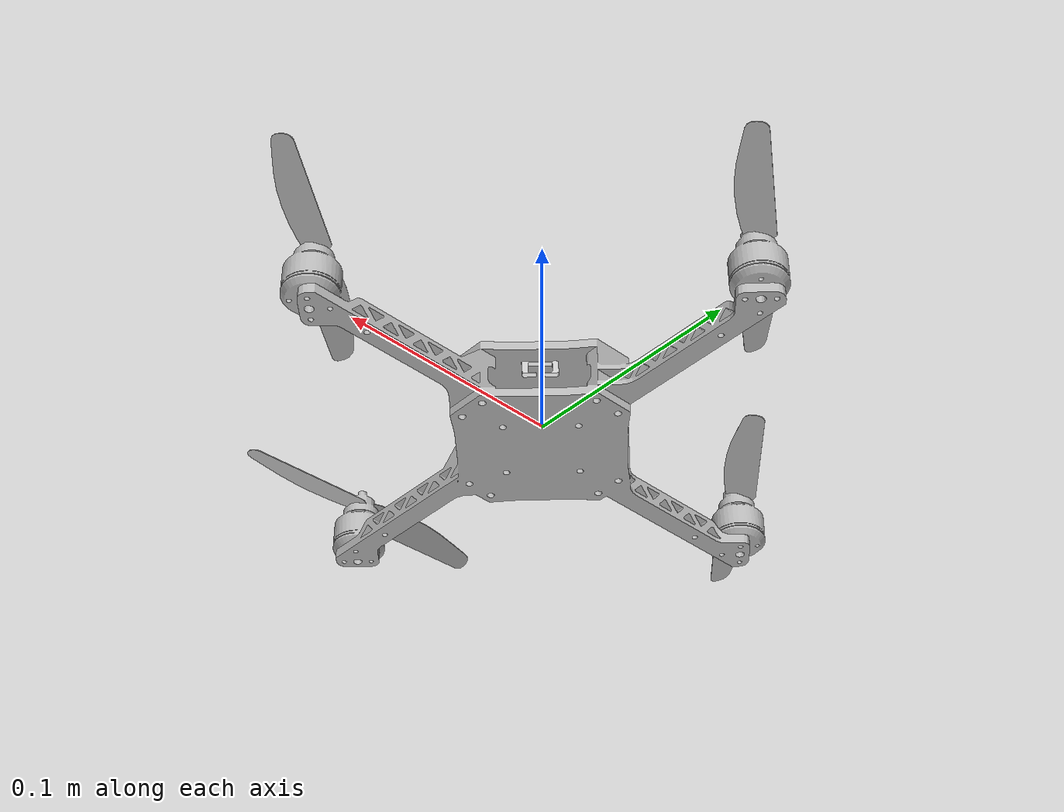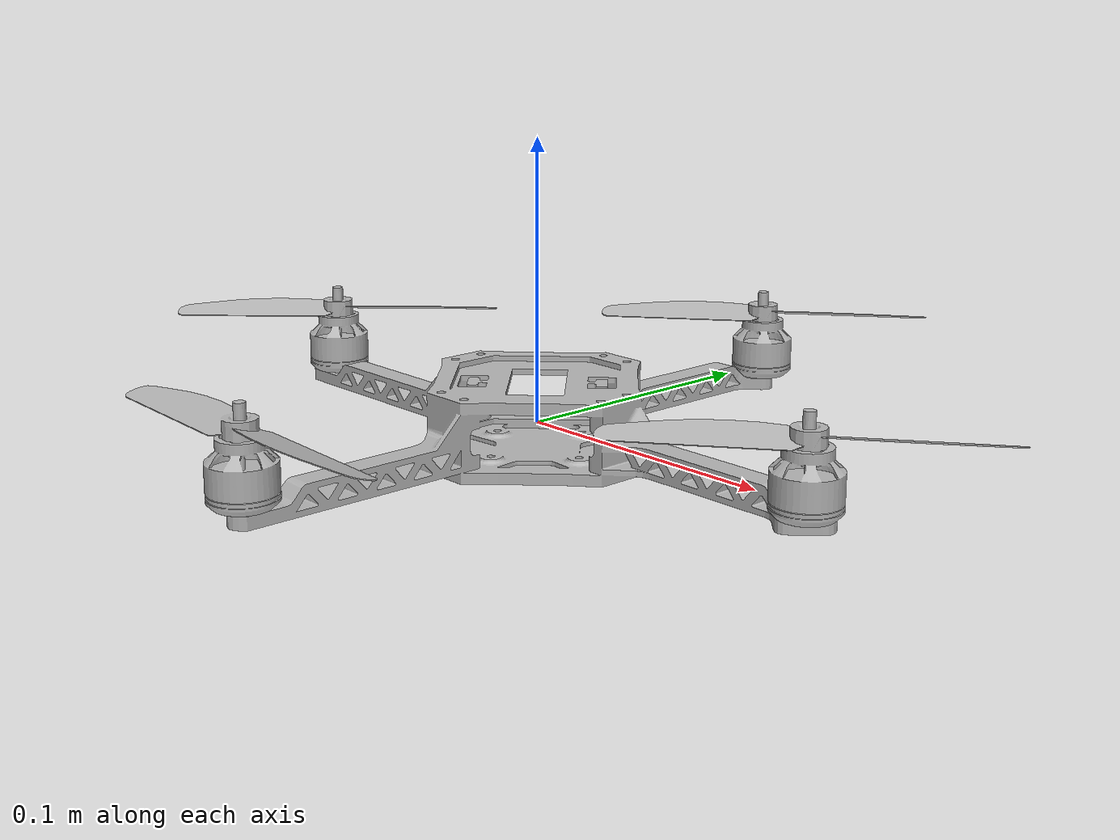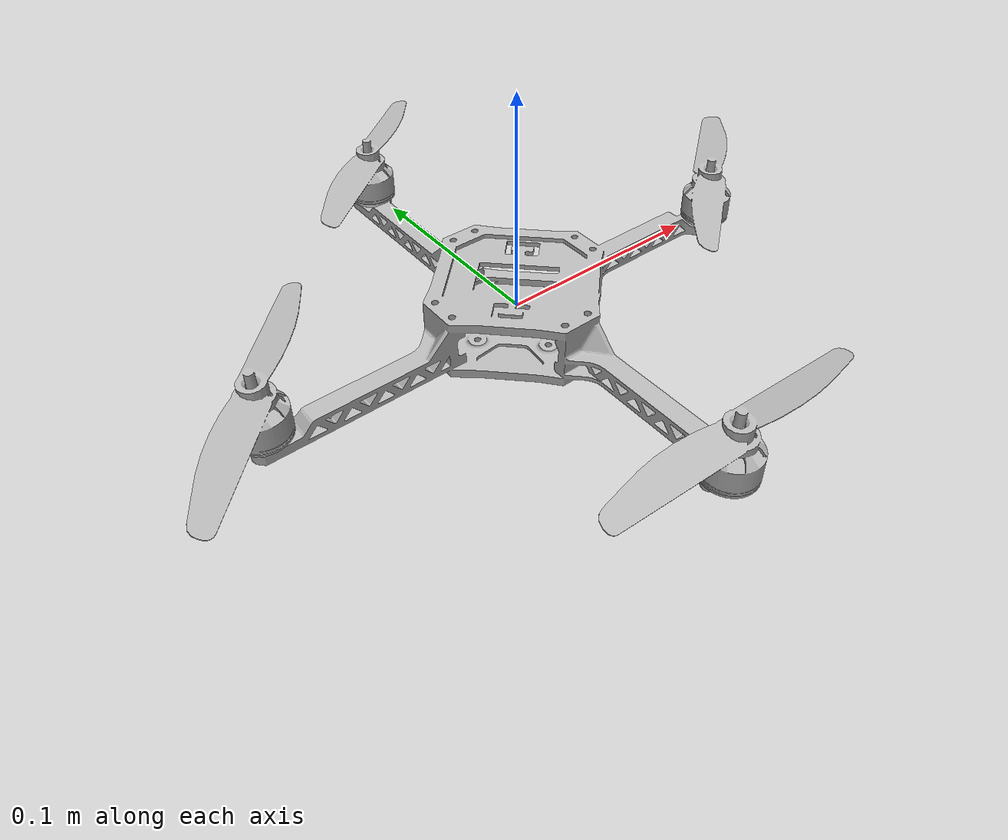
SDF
<sdf version='1.6'>
  <model name='quadcopter'>
    <link name='main_body'>
      <pose frame=''>0 0 0 0 -0 0</pose>
      <inertial>
        <pose frame=''>0 -0 0 0 -0 0</pose>
        <mass>2.4</mass>
        <inertia>
          <ixx>0.00010119</ixx>
          <ixy>5.6493e-08</ixy>
          <ixz>2.442e-14</ixz>
          <iyy>0.00010119</iyy>
          <iyz>-2.2727e-14</iyz>
          <izz>0.00019415</izz>
        </inertia>
      </inertial>
      <collision name='main_body_collision'>
        <pose frame=''>0 0 0 0 -0 0</pose>
        <geometry>
          <mesh>
            <scale>1 1 1</scale>
            <uri>model://quadcopter/meshes/main_body.STL</uri>
          </mesh>
        </geometry>
      </collision>
      <visual name='main_body_visual'>
        <pose frame=''>0 0 0 0 -0 0</pose>
        <geometry>
          <mesh>
            <scale>1 1 1</scale>
            <uri>model://quadcopter/meshes/main_body.STL</uri>
          </mesh>
        </geometry>
      </visual>
    </link>
    <link name='motor1'>
      <pose frame=''>-0.12 0 0.007797 -0 -0 -0.7854</pose>
      <inertial>
        <pose frame=''>0 -0 0 0 -0 0</pose>
        <mass>0.0067333</mass>
        <inertia>
          <ixx>1.2162e-06</ixx>
          <ixy>4.1395e-08</ixy>
          <ixz>-4.4137e-19</ixz>
          <iyy>6.3625e-07</iyy>
          <iyz>-1.4697e-17</iyz>
          <izz>9.6099e-07</izz>
        </inertia>
      </inertial>
      <collision name='motor1_collision'>
        <pose frame=''>0 0 0 0 -0 0</pose>
        <geometry>
          <mesh>
            <scale>1 1 1</scale>
            <uri>model://quadcopter/meshes/motor1.STL</uri>
          </mesh>
        </geometry>
      </collision>
      <visual name='motor1_visual'>
        <pose frame=''>0 0 0 0 -0 0</pose>
        <geometry>
          <mesh>
            <scale>1 1 1</scale>
            <uri>model://quadcopter/meshes/motor1.STL</uri>
          </mesh>
        </geometry>
      </visual>
    </link>
    <joint name='prp1' type='revolute'>
      <child>motor1</child>
      <parent>main_body</parent>
      <axis>
        <xyz>0 0 1</xyz>
        <limit>
          <lower>0</lower>
          <upper>31415</upper>
          <effort>0</effort>
          <velocity>0</velocity>
        </limit>
        <dynamics>
          <spring_reference>0</spring_reference>
          <spring_stiffness>0</spring_stiffness>
        </dynamics>
        <use_parent_model_frame>1</use_parent_model_frame>
      </axis>
    </joint>
    <link name='motor2'>
      <pose frame=''>0 -0.12 0.007797 -0 -0 -0.7854</pose>
      <inertial>
        <pose frame=''>-0 -0 0 0 -0 0</pose>
        <mass>0.0067333</mass>
        <inertia>
          <ixx>9.2893e-07</ixx>
          <ixy>-2.9263e-07</ixy>
          <ixz>-4.4012e-19</ixz>
          <iyy>9.2349e-07</iyy>
          <iyz>-1.4699e-17</iyz>
          <izz>9.6099e-07</izz>
        </inertia>
      </inertial>
      <collision name='motor2_collision'>
        <pose frame=''>0 0 0 0 -0 0</pose>
        <geometry>
          <mesh>
            <scale>1 1 1</scale>
            <uri>model://quadcopter/meshes/motor2.STL</uri>
          </mesh>
        </geometry>
      </collision>
      <visual name='motor2_visual'>
        <pose frame=''>0 0 0 0 -0 0</pose>
        <geometry>
          <mesh>
            <scale>1 1 1</scale>
            <uri>model://quadcopter/meshes/motor2.STL</uri>
          </mesh>
        </geometry>
      </visual>
    </link>
    <joint name='prp2' type='revolute'>
      <child>motor2</child>
      <parent>main_body</parent>
      <axis>
        <xyz>0 0 1</xyz>
        <limit>
          <lower>0</lower>
          <upper>31415</upper>
          <effort>0</effort>
          <velocity>0</velocity>
        </limit>
        <dynamics>
          <spring_reference>0</spring_reference>
          <spring_stiffness>0</spring_stiffness>
        </dynamics>
        <use_parent_model_frame>1</use_parent_model_frame>
      </axis>
    </joint>
    <link name='motor3'>
      <pose frame=''>0.12 0 0.007797 -0 -0 -0.7854</pose>
      <inertial>
        <pose frame=''>-0 -0 0 0 -0 0</pose>
        <mass>0.0067333</mass>
        <inertia>
          <ixx>1.2154e-06</ixx>
          <ixy>-4.6293e-08</ixy>
          <ixz>-4.4086e-19</ixz>
          <iyy>6.3699e-07</iyy>
          <iyz>-1.47e-17</iyz>
          <izz>9.6099e-07</izz>
        </inertia>
      </inertial>
      <collision name='motor3_collision'>
        <pose frame=''>0 0 0 0 -0 0</pose>
        <geometry>
          <mesh>
            <scale>1 1 1</scale>
            <uri>model://quadcopter/meshes/motor3.STL</uri>
          </mesh>
        </geometry>
      </collision>
      <visual name='motor3_visual'>
        <pose frame=''>0 0 0 0 -0 0</pose>
        <geometry>
          <mesh>
            <scale>1 1 1</scale>
            <uri>model://quadcopter/meshes/motor3.STL</uri>
          </mesh>
        </geometry>
      </visual>
    </link>
    <joint name='prp3' type='revolute'>
      <child>motor3</child>
      <parent>main_body</parent>
      <axis>
        <xyz>0 0 1</xyz>
        <limit>
          <lower>0</lower>
          <upper>31415</upper>
          <effort>0</effort>
          <velocity>0</velocity>
        </limit>
        <dynamics>
          <spring_reference>0</spring_reference>
          <spring_stiffness>0</spring_stiffness>
        </dynamics>
        <use_parent_model_frame>1</use_parent_model_frame>
      </axis>
    </joint>
    <link name='motor4'>
      <pose frame=''>0 0.12 0.007797 -0 -0 -0.7854</pose>
      <inertial>
        <pose frame=''>0 -0 0 0 -0 0</pose>
        <mass>0.0067333</mass>
        <inertia>
          <ixx>1.2172e-06</ixx>
          <ixy>-3.346e-08</ixy>
          <ixz>-4.4048e-19</ixz>
          <iyy>6.3522e-07</iyy>
          <iyz>-1.4698e-17</iyz>
          <izz>9.6099e-07</izz>
        </inertia>
      </inertial>
      <collision name='motor4_collision'>
        <pose frame=''>0 0 0 0 -0 0</pose>
        <geometry>
          <mesh>
            <scale>1 1 1</scale>
            <uri>model://quadcopter/meshes/motor4.STL</uri>
          </mesh>
        </geometry>
      </collision>
      <visual name='motor4_visual'>
        <pose frame=''>0 0 0 0 -0 0</pose>
        <geometry>
          <mesh>
            <scale>1 1 1</scale>
            <uri>model://quadcopter/meshes/motor4.STL</uri>
          </mesh>
        </geometry>
      </visual>
    </link>
    <joint name='prp4' type='revolute'>
      <child>motor4</child>
      <parent>main_body</parent>
      <axis>
        <xyz>0 0 1</xyz>
        <limit>
          <lower>0</lower>
          <upper>31415</upper>
          <effort>0</effort>
          <velocity>0</velocity>
        </limit>
        <dynamics>
          <spring_reference>0</spring_reference>
          <spring_stiffness>0</spring_stiffness>
        </dynamics>
        <use_parent_model_frame>1</use_parent_model_frame>
      </axis>
    </joint>
    <plugin name="empuxo"
filename="libgazebo_ros_brushless_plugin.so">
            <topic_FR>Empuxoh1</topic_FR>
            <LinkDir>motor1</LinkDir>
            <topic_FL>Empuxoh2</topic_FL>
            <LinkEsq>motor2</LinkEsq>
            <DragCte>0.02</DragCte>
     	  </plugin>
     <plugin name="empuxo"
filename="libgazebo_ros_brushless_plugin.so">
            <topic_FR>Empuxoh3</topic_FR>
            <LinkDir>motor3</LinkDir>
            <topic_FL>Empuxoh4</topic_FL>
            <LinkEsq>motor4</LinkEsq>
            <DragCte>0.02</DragCte>
         </plugin>
      <plugin name="VetorEstados"
filename="libgazebo_ros_QuadData.so">
            <NameOfTopic>Estados</NameOfTopic>
            <bodyName>main_body</bodyName>
     </plugin>
  </model>
</sdf>
